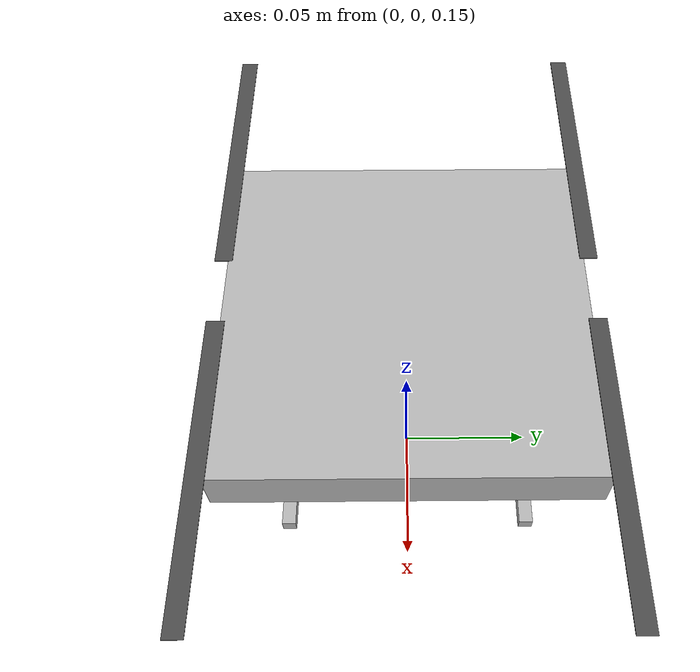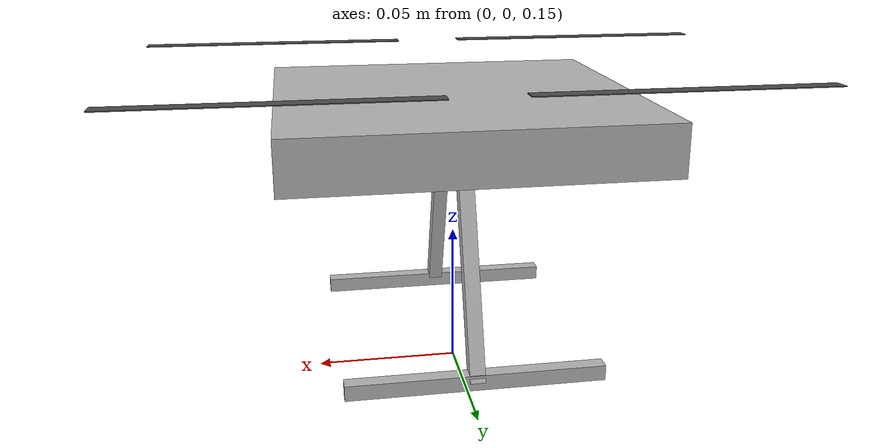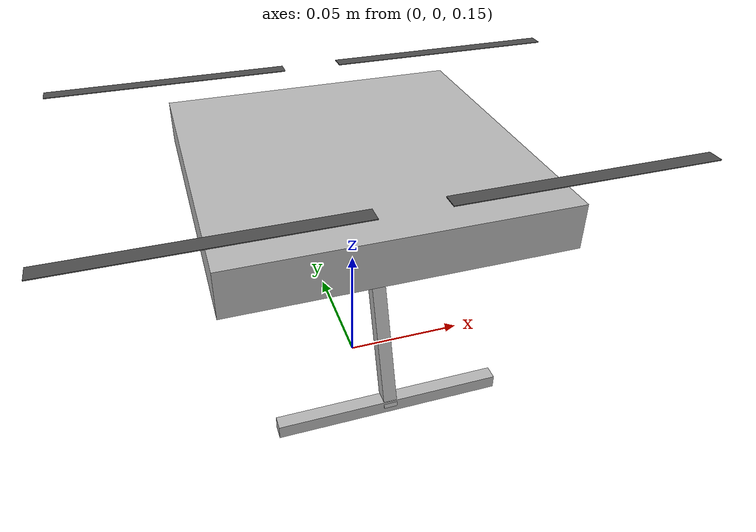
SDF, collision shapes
<?xml version="1.0" encoding="UTF-8"?>
<sdf version='1.9'>
  <model name='x500_small'>
    <include merge='true'>
      <uri>model://x500_small_base</uri>
    </include>
    <plugin filename="gz-sim-multicopter-motor-model-system"
      name="gz::sim::systems::MulticopterMotorModel">
      <jointName>rotor_0_joint</jointName>
      <linkName>rotor_0</linkName>
      <turningDirection>ccw</turningDirection>
      <timeConstantUp>0.0125</timeConstantUp>
      <timeConstantDown>0.025</timeConstantDown>
      <maxRotVelocity>1000.0</maxRotVelocity>
      <motorConstant>8.54858e-06</motorConstant>
      <momentConstant>0.016</momentConstant>
      <commandSubTopic>command/motor_speed</commandSubTopic>
      <motorNumber>0</motorNumber>
      <rotorDragCoefficient>8.06428e-05</rotorDragCoefficient>
      <rollingMomentCoefficient>1e-06</rollingMomentCoefficient>
      <rotorVelocitySlowdownSim>10</rotorVelocitySlowdownSim>
      <motorType>velocity</motorType>
    </plugin>
    <plugin filename="gz-sim-multicopter-motor-model-system"
      name="gz::sim::systems::MulticopterMotorModel">
      <jointName>rotor_1_joint</jointName>
      <linkName>rotor_1</linkName>
      <turningDirection>ccw</turningDirection>
      <timeConstantUp>0.0125</timeConstantUp>
      <timeConstantDown>0.025</timeConstantDown>
      <maxRotVelocity>1000.0</maxRotVelocity>
      <motorConstant>8.54858e-06</motorConstant>
      <momentConstant>0.016</momentConstant>
      <commandSubTopic>command/motor_speed</commandSubTopic>
      <motorNumber>1</motorNumber>
      <rotorDragCoefficient>8.06428e-05</rotorDragCoefficient>
      <rollingMomentCoefficient>1e-06</rollingMomentCoefficient>
      <rotorVelocitySlowdownSim>10</rotorVelocitySlowdownSim>
      <motorType>velocity</motorType>
    </plugin>
    <plugin filename="gz-sim-multicopter-motor-model-system"
      name="gz::sim::systems::MulticopterMotorModel">
      <jointName>rotor_2_joint</jointName>
      <linkName>rotor_2</linkName>
      <turningDirection>cw</turningDirection>
      <timeConstantUp>0.0125</timeConstantUp>
      <timeConstantDown>0.025</timeConstantDown>
      <maxRotVelocity>1000.0</maxRotVelocity>
      <motorConstant>8.54858e-06</motorConstant>
      <momentConstant>0.016</momentConstant>
      <commandSubTopic>command/motor_speed</commandSubTopic>
      <motorNumber>2</motorNumber>
      <rotorDragCoefficient>8.06428e-05</rotorDragCoefficient>
      <rollingMomentCoefficient>1e-06</rollingMomentCoefficient>
      <rotorVelocitySlowdownSim>10</rotorVelocitySlowdownSim>
      <motorType>velocity</motorType>
    </plugin>
    <plugin filename="gz-sim-multicopter-motor-model-system"
      name="gz::sim::systems::MulticopterMotorModel">
      <jointName>rotor_3_joint</jointName>
      <linkName>rotor_3</linkName>
      <turningDirection>cw</turningDirection>
      <timeConstantUp>0.0125</timeConstantUp>
      <timeConstantDown>0.025</timeConstantDown>
      <maxRotVelocity>1000.0</maxRotVelocity>
      <motorConstant>8.54858e-06</motorConstant>
      <momentConstant>0.016</momentConstant>
      <commandSubTopic>command/motor_speed</commandSubTopic>
      <motorNumber>3</motorNumber>
      <rotorDragCoefficient>8.06428e-05</rotorDragCoefficient>
      <rollingMomentCoefficient>1e-06</rollingMomentCoefficient>
      <rotorVelocitySlowdownSim>10</rotorVelocitySlowdownSim>
      <motorType>velocity</motorType>
    </plugin>
  </model>
</sdf>

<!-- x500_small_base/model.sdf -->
<sdf version='1.9'>
  <model name='x500_small_base'>
    <pose>0 0 .24 0 0 0</pose>
    <self_collide>false</self_collide>
    <static>false</static>
    <link name="base_link">
      <inertial>
        <mass>2.0</mass>
        <inertia>
          <ixx>0.02166666666666667</ixx>
          <ixy>0</ixy>
          <ixz>0</ixz>
          <iyy>0.02166666666666667</iyy>
          <iyz>0</iyz>
          <izz>0.04000000000000001</izz>
        </inertia>
      </inertial>
      <gravity>true</gravity>
      <velocity_decay />
      <visual name="base_link_visual">
        <pose>0 0 .00875 0 0 3.141592654</pose>
        <geometry>
          <mesh>
            <scale>0.35 0.35 0.35</scale>
            <uri>model://x500_base/meshes/NXP-HGD-CF.dae</uri>
          </mesh>
        </geometry>
      </visual>
      <visual name="5010_motor_base_0">
        <pose>0.0609 0.0609 .0112 0 0 -.45</pose>
        <geometry>
          <mesh>
            <scale>0.35 0.35 0.35</scale>
            <uri>model://x500_base/meshes/5010Base.dae</uri>
          </mesh>
        </geometry>
      </visual>
      <visual name="5010_motor_base_1">
        <pose>-0.0609 0.0609 .0112 0 0 -.45</pose>
        <geometry>
          <mesh>
            <scale>0.35 0.35 0.35</scale>
            <uri>model://x500_base/meshes/5010Base.dae</uri>
          </mesh>
        </geometry>
      </visual>
      <visual name="5010_motor_base_2">
        <pose>0.0609 -0.0609 .0112 0 0 -.45</pose>
        <geometry>
          <mesh>
            <scale>0.35 0.35 0.35</scale>
            <uri>model://x500_base/meshes/5010Base.dae</uri>
          </mesh>
        </geometry>
      </visual>
      <visual name="5010_motor_base_3">
        <pose>-0.0609 -0.0609 .0112 0 0 -.45</pose>
        <geometry>
          <mesh>
            <scale>0.35 0.35 0.35</scale>
            <uri>model://x500_base/meshes/5010Base.dae</uri>
          </mesh>
        </geometry>
      </visual>
      <collision name="base_link_collision_0">
        <pose>0 0 .00245 0 0 0</pose>
        <geometry>
          <box>
            <size>0.1237436867 0.1237436867 0.0175</size>
          </box>
        </geometry>
        <surface>
          <contact>
            <ode>
              <min_depth>0.001</min_depth>
              <max_vel>0</max_vel>
            </ode>
          </contact>
          <friction>
            <ode />
          </friction>
        </surface>
      </collision>
      <collision name="base_link_collision_1">
        <pose>0 -0.0343 -.04305 -0.35 0 0</pose>
        <geometry>
          <box>
            <size>0.00525 0.00525 0.0735</size>
          </box>
        </geometry>
        <surface>
          <contact>
            <ode>
              <min_depth>0.001</min_depth>
              <max_vel>0</max_vel>
            </ode>
          </contact>
          <friction>
            <ode />
          </friction>
        </surface>
      </collision>
      <collision name="base_link_collision_2">
        <pose>0 0.0343 -.04305 0.35 0 0</pose>
        <geometry>
          <box>
            <size>0.00525 0.00525 0.0735</size>
          </box>
        </geometry>
        <surface>
          <contact>
            <ode>
              <min_depth>0.001</min_depth>
              <max_vel>0</max_vel>
            </ode>
          </contact>
          <friction>
            <ode />
          </friction>
        </surface>
      </collision>
      <collision name="base_link_collision_3">
        <pose>0 -0.0462 -.076825 0 0 0</pose>
        <geometry>
          <box>
            <size>0.0875 0.00525 0.00525</size>
          </box>
        </geometry>
        <surface>
          <contact>
            <ode>
              <min_depth>0.001</min_depth>
              <max_vel>0</max_vel>
            </ode>
          </contact>
          <friction>
            <ode />
          </friction>
        </surface>
      </collision>
      <collision name="base_link_collision_4">
        <pose>0 0.0462 -.076825 0 0 0</pose>
        <geometry>
          <box>
            <size>0.0875 0.00525 0.00525</size>
          </box>
        </geometry>
        <surface>
          <contact>
            <ode>
              <min_depth>0.001</min_depth>
              <max_vel>0</max_vel>
            </ode>
          </contact>
          <friction>
            <ode />
          </friction>
        </surface>
      </collision>
      <sensor name="air_pressure_sensor" type="air_pressure">
        <gz_frame_id>base_link</gz_frame_id>
        <always_on>1</always_on>
        <update_rate>50</update_rate>
        <air_pressure>
          <!-- Noise modeled after BMP390 -->
          <pressure>
            <noise type="gaussian">
              <mean>0</mean>
              <stddev>3</stddev>
            </noise>
          </pressure>
        </air_pressure>
      </sensor>
      <sensor name="magnetometer_sensor" type="magnetometer">
        <gz_frame_id>base_link</gz_frame_id>
        <always_on>1</always_on>
        <update_rate>100</update_rate>
        <magnetometer>
          <!-- TODO: update to fix units and coordinate system when we move past Harmonic -->
          <!-- See https://github.com/gazebosim/gz-sim/pull/2460 -->
          <!-- 3mgauss RMS: NOTE: noise is in tesla but sensor reports data in gauss -->
          <!-- Noise modeled after IIS2MDC -->
          <x>
            <noise type="gaussian">
              <stddev>0.0001</stddev>
            </noise>
          </x>
          <y>
            <noise type="gaussian">
              <stddev>0.0001</stddev>
            </noise>
          </y>
          <z>
            <noise type="gaussian">
              <stddev>0.0001</stddev>
            </noise>
          </z>
        </magnetometer>
      </sensor>
      <sensor name="imu_sensor" type="imu">
        <gz_frame_id>base_link</gz_frame_id>
        <always_on>1</always_on>
        <update_rate>250</update_rate>
        <imu>
          <angular_velocity>
            <!-- Noise modeled after IIM42653 -->
            <!-- 0.05 deg/s converted to rad/s -->
            <x>
              <noise type="gaussian">
                <mean>0.0</mean>
                <stddev>0.0008726646</stddev>
              </noise>
            </x>
            <y>
              <noise type="gaussian">
                <mean>0.0</mean>
                <stddev>0.0008726646</stddev>
              </noise>
            </y>
            <z>
              <noise type="gaussian">
                <mean>0.0</mean>
                <stddev>0.0008726646</stddev>
              </noise>
            </z>
          </angular_velocity>
          <linear_acceleration>
            <!-- Noise modeled after IIM42653 -->
            <!-- X & Y axis: 0.65 mg-rms converted to m/ss -->
            <x>
              <noise type="gaussian">
                <mean>0.0</mean>
                <stddev>0.00637</stddev>
              </noise>
            </x>
            <y>
              <noise type="gaussian">
                <mean>0.0</mean>
                <stddev>0.00637</stddev>
              </noise>
            </y>
            <!-- Z axis: 0.70 mg-rms converted to m/ss-->
            <z>
              <noise type="gaussian">
                <mean>0.0</mean>
                <stddev>0.00686</stddev>
              </noise>
            </z>
          </linear_acceleration>
        </imu>
      </sensor>
      <sensor name="navsat_sensor" type="navsat">
        <gz_frame_id>base_link</gz_frame_id>
        <always_on>1</always_on>
        <update_rate>30</update_rate>
      </sensor>
    </link>
    <link name="rotor_0">
      <gravity>true</gravity>
      <self_collide>false</self_collide>
      <velocity_decay />
      <pose>0.0609 -0.0609 0.021 0 0 0</pose>
      <inertial>
        <mass>0.016076923076923075</mass>
        <inertia>
          <ixx>3.8464910483993325e-07</ixx>
          <iyy>2.6115851691700804e-05</iyy>
          <izz>2.649858234714004e-05</izz>
        </inertia>
      </inertial>
      <visual name="rotor_0_visual">
        <pose>-0.0077 -0.051234615 -0.0056 0 0 0</pose>
        <geometry>
          <mesh>
            <scale>0.29615384615 0.29615384615 0.29615384615</scale>
            <uri>model://x500_base/meshes/1345_prop_ccw.stl</uri>
          </mesh>
        </geometry>
        <material>
          <script>
            <name>Gazebo/DarkGrey</name>
            <uri>file://media/materials/scripts/gazebo.material</uri>
          </script>
        </material>
      </visual>
      <visual name="rotor_0_visual_motor_bell">
        <pose>0 0 -.0112 0 0 0</pose>
        <geometry>
          <mesh>
            <scale>0.35 0.35 0.35</scale>
            <uri>model://x500_base/meshes/5010Bell.dae</uri>
          </mesh>
        </geometry>
      </visual>
      <collision name="rotor_0_collision">
        <pose>0 0 0 0 0 0 </pose>
        <geometry>
          <box>
            <size>0.09773076923 0.005923076923 0.000296153846</size>
          </box>
        </geometry>
        <surface>
          <contact>
            <ode>
              <min_depth>0.001</min_depth>
              <max_vel>0</max_vel>
            </ode>
          </contact>
          <friction>
            <ode />
          </friction>
        </surface>
      </collision>
    </link>
    <joint name="rotor_0_joint" type="revolute">
      <parent>base_link</parent>
      <child>rotor_0</child>
      <axis>
        <xyz>0 0 1</xyz>
        <limit>
          <lower>-1e+16</lower>
          <upper>1e+16</upper>
        </limit>
        <dynamics>
          <spring_reference>0</spring_reference>
          <spring_stiffness>0</spring_stiffness>
        </dynamics>
      </axis>
    </joint>
    <link name="rotor_1">
      <gravity>true</gravity>
      <self_collide>false</self_collide>
      <velocity_decay />
      <pose>-0.0609 0.0609 0.021 0 0 0</pose>
      <inertial>
        <mass>0.016076923076923075</mass>
        <inertia>
          <ixx>3.8464910483993325e-07</ixx>
          <iyy>2.6115851691700804e-05</iyy>
          <izz>2.649858234714004e-05</izz>
        </inertia>
      </inertial>
      <visual name="rotor_1_visual">
        <pose>-0.0077 -0.0512346154 -0.0056 0 0 0</pose>
        <geometry>
          <mesh>
            <scale>0.29615384615 0.29615384615 0.29615384615</scale>
            <uri>model://x500_base/meshes/1345_prop_ccw.stl</uri>
          </mesh>
        </geometry>
        <material>
          <script>
            <name>Gazebo/DarkGrey</name>
            <uri>file://media/materials/scripts/gazebo.material</uri>
          </script>
        </material>
      </visual>
      <visual name="rotor_1_visual_motor_top">
        <pose>0 0 -.0112 0 0 0</pose>
        <geometry>
          <mesh>
            <scale>0.35 0.35 0.35</scale>
            <uri>model://x500_base/meshes/5010Bell.dae</uri>
          </mesh>
        </geometry>
      </visual>
      <collision name="rotor_1_collision">
        <pose>0 0 0 0 0 0 </pose>
        <geometry>
          <box>
            <size>0.09773076923 0.00592307692 0.0002961538462</size>
          </box>
        </geometry>
        <surface>
          <contact>
            <ode>
              <min_depth>0.001</min_depth>
              <max_vel>0</max_vel>
            </ode>
          </contact>
          <friction>
            <ode />
          </friction>
        </surface>
      </collision>
    </link>
    <joint name="rotor_1_joint" type="revolute">
      <parent>base_link</parent>
      <child>rotor_1</child>
      <axis>
        <xyz>0 0 1</xyz>
        <limit>
          <lower>-1e+16</lower>
          <upper>1e+16</upper>
        </limit>
        <dynamics>
          <spring_reference>0</spring_reference>
          <spring_stiffness>0</spring_stiffness>
        </dynamics>
      </axis>
    </joint>
    <link name="rotor_2">
      <gravity>true</gravity>
      <self_collide>false</self_collide>
      <velocity_decay />
      <pose>0.0609 0.0609 0.021 0 0 0</pose>
      <inertial>
        <mass>0.016076923076923075</mass>
        <inertia>
          <ixx>3.8464910483993325e-07</ixx>
          <iyy>2.6115851691700804e-05</iyy>
          <izz>2.649858234714004e-05</izz>
        </inertia>
      </inertial>
      <visual name="rotor_2_visual">
        <pose>-0.0077 -0.05123461538 -0.0056 0 0 0</pose>
        <geometry>
          <mesh>
            <scale>0.29615384615 0.29615384615 0.29615384615</scale>
            <uri>model://x500_base/meshes/1345_prop_cw.stl</uri>
          </mesh>
        </geometry>
        <material>
          <script>
            <name>Gazebo/DarkGrey</name>
            <uri>file://media/materials/scripts/gazebo.material</uri>
          </script>
        </material>
      </visual>
      <visual name="rotor_2_visual_motor_top">
        <pose>0 0 -.0112 0 0 0</pose>
        <geometry>
          <mesh>
            <scale>0.35 0.35 0.35</scale>
            <uri>model://x500_base/meshes/5010Bell.dae</uri>
          </mesh>
        </geometry>
      </visual>
      <collision name="rotor_2_collision">
        <pose>0 0 0 0 0 0 </pose>
        <geometry>
          <box>
            <size>0.097730769231 0.00592307692308 0.000296153846154</size>
          </box>
        </geometry>
        <surface>
          <contact>
            <ode>
              <min_depth>0.001</min_depth>
              <max_vel>0</max_vel>
            </ode>
          </contact>
          <friction>
            <ode />
          </friction>
        </surface>
      </collision>
    </link>
    <joint name="rotor_2_joint" type="revolute">
      <parent>base_link</parent>
      <child>rotor_2</child>
      <axis>
        <xyz>0 0 1</xyz>
        <limit>
          <lower>-1e+16</lower>
          <upper>1e+16</upper>
        </limit>
        <dynamics>
          <spring_reference>0</spring_reference>
          <spring_stiffness>0</spring_stiffness>
        </dynamics>
      </axis>
    </joint>
    <link name="rotor_3">
      <gravity>true</gravity>
      <self_collide>false</self_collide>
      <velocity_decay />
      <pose>-0.0609 -0.0609 0.021 0 0 0</pose>
      <inertial>
        <mass>0.016076923076923075</mass>
        <inertia>
          <ixx>3.8464910483993325e-07</ixx>
          <iyy>2.6115851691700804e-05</iyy>
          <izz>2.649858234714004e-05</izz>
        </inertia>
      </inertial>
      <visual name="rotor_3_visual">
        <pose>-0.0077 -0.051234615383 -0.0056 0 0 0</pose>
        <geometry>
          <mesh>
            <scale>0.29615384615 0.29615384615 0.29615384615</scale>
            <uri>model://x500_base/meshes/1345_prop_cw.stl</uri>
          </mesh>
        </geometry>
        <material>
          <script>
            <name>Gazebo/DarkGrey</name>
            <uri>file://media/materials/scripts/gazebo.material</uri>
          </script>
        </material>
      </visual>
      <visual name="rotor_3_visual_motor_top">
        <pose>0 0 -.0112 0 0 0</pose>
        <geometry>
          <mesh>
            <scale>0.35 0.35 0.35</scale>
            <uri>model://x500_base/meshes/5010Bell.dae</uri>
          </mesh>
        </geometry>
      </visual>
      <collision name="rotor_3_collision">
        <pose>0 0 0 0 0 0 </pose>
        <geometry>
          <box>
            <size>0.097730769231 0.0059230769231 0.00029615384615</size>
          </box>
        </geometry>
        <surface>
          <contact>
            <ode>
              <min_depth>0.001</min_depth>
              <max_vel>0</max_vel>
            </ode>
          </contact>
          <friction>
            <ode />
          </friction>
        </surface>
      </collision>
    </link>
    <joint name="rotor_3_joint" type="revolute">
      <parent>base_link</parent>
      <child>rotor_3</child>
      <axis>
        <xyz>0 0 1</xyz>
        <limit>
          <lower>-1e+16</lower>
          <upper>1e+16</upper>
        </limit>
        <dynamics>
          <spring_reference>0</spring_reference>
          <spring_stiffness>0</spring_stiffness>
        </dynamics>
      </axis>
    </joint>
  </model>
</sdf>
